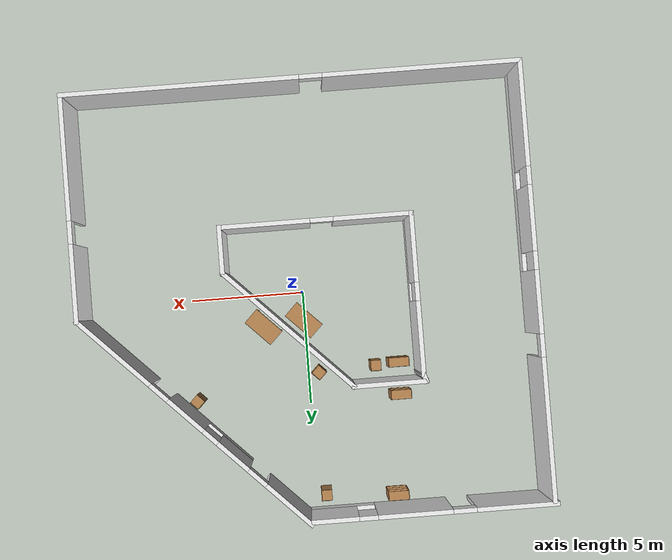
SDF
<sdf version="1.4">
 <world name="prepare">
  <model name="prepare">
   <link name="Wall_1">
    <pose>-4.94307 9.79265 0 0 -0 0</pose>
    <visual name="Wall_1_Visual_0">
     <pose>-3.52838 0 1.25 0 -0 0</pose>
     <geometry><box><size>3.5302 0.2 2.5</size></box></geometry>
     <material>
      <script><uri>file://media/materials/scripts/gazebo.material</uri><name>Gazebo/White</name></script>
     </material>
    </visual>
    <collision name="Wall_1_Collision_0">
     <geometry><box><size>3.5302 0.2 2.5</size></box></geometry>
     <pose>-3.52838 0 1.25 0 -0 0</pose>
    </collision>
    <visual name="Wall_1_Visual_1">
     <pose>0.845398 0 1.25 0 -0 0</pose>
     <geometry><box><size>3.21735 0.2 2.5</size></box></geometry>
     <material>
      <script><uri>file://media/materials/scripts/gazebo.material</uri><name>Gazebo/White</name></script>
     </material>
    </visual>
    <collision name="Wall_1_Collision_1">
     <geometry><box><size>3.21735 0.2 2.5</size></box></geometry>
     <pose>0.845398 0 1.25 0 -0 0</pose>
    </collision>
    <visual name="Wall_1_Visual_2">
     <pose>3.87378 0 0.25 0 -0 0</pose>
     <geometry><box><size>2.83941 0.2 0.5</size></box></geometry>
     <material>
      <script><uri>file://media/materials/scripts/gazebo.material</uri><name>Gazebo/White</name></script>
     </material>
    </visual>
    <collision name="Wall_1_Collision_2">
     <geometry><box><size>2.83941 0.2 0.5</size></box></geometry>
     <pose>3.87378 0 0.25 0 -0 0</pose>
    </collision>
    <visual name="Wall_1_Visual_3">
     <pose>4.27378 0 1.5 0 -0 0</pose>
     <geometry><box><size>2.0394 0.2 2</size></box></geometry>
     <material>
      <script><uri>file://media/materials/scripts/gazebo.material</uri><name>Gazebo/White</name></script>
     </material>
    </visual>
    <collision name="Wall_1_Collision_3">
     <geometry><box><size>2.0394 0.2 2</size></box></geometry>
     <pose>4.27378 0 1.5 0 -0 0</pose>
    </collision>
    <visual name="Wall_1_Visual_4">
     <pose>2.85407 0 1.9 0 -0 0</pose>
     <geometry><box><size>0.8 0.2 1.2</size></box></geometry>
     <material>
      <script><uri>file://media/materials/scripts/gazebo.material</uri><name>Gazebo/White</name></script>
     </material>
    </visual>
    <collision name="Wall_1_Collision_4">
     <geometry><box><size>0.8 0.2 1.2</size></box></geometry>
     <pose>2.85407 0 1.9 0 -0 0</pose>
    </collision>
    <visual name="Wall_1_Visual_5">
     <pose>-1.26328 0 2.25 0 -0 0</pose>
     <geometry><box><size>1 0.2 0.5</size></box></geometry>
     <material>
      <script><uri>file://media/materials/scripts/gazebo.material</uri><name>Gazebo/White</name></script>
     </material>
    </visual>
    <collision name="Wall_1_Collision_5">
     <geometry><box><size>1 0.2 0.5</size></box></geometry>
     <pose>-1.26328 0 2.25 0 -0 0</pose>
    </collision>
    <velocity_decay><linear>0</linear><angular>0</angular></velocity_decay>
   </link>
   <link name="Wall_10">
    <collision name="Wall_10_Collision">
     <geometry><box><size>2.1651 0.2 2.5</size></box></geometry>
     <pose>0 0 1.25 0 -0 0</pose>
    </collision>
    <visual name="Wall_10_Visual">
     <pose>0 0 1.25 0 -0 0</pose>
     <geometry><box><size>2.1651 0.2 2.5</size></box></geometry>
     <material>
      <script><uri>file://media/materials/scripts/gazebo.material</uri><name>Gazebo/White</name></script>
     </material>
    </visual>
    <velocity_decay><linear>0</linear><angular>0</angular></velocity_decay>
    <pose>3.33843 -2.04474 0 0 -0 1.5708</pose>
   </link>
   <link name="Wall_11">
    <collision name="Wall_11_Collision">
     <geometry><box><size>7.61086 0.2 2.5</size></box></geometry>
     <pose>0 0 1.25 0 -0 0</pose>
    </collision>
    <visual name="Wall_11_Visual">
     <pose>0 0 1.25 0 -0 0</pose>
     <geometry><box><size>7.61086 0.2 2.5</size></box></geometry>
     <material>
      <script><uri>file://media/materials/scripts/gazebo.material</uri><name>Gazebo/White</name></script>
     </material>
    </visual>
    <velocity_decay><linear>0</linear><angular>0</angular></velocity_decay>
    <pose>0.718295 1.55795 0 0 -0 2.35619</pose>
   </link>
   <link name="Wall_12">
    <collision name="Wall_12_Collision">
     <geometry><box><size>3.28802 0.2 2.5</size></box></geometry>
     <pose>0 0 1.25 0 -0 0</pose>
    </collision>
    <visual name="Wall_12_Visual">
     <pose>0 0 1.25 0 -0 0</pose>
     <geometry><box><size>3.28802 0.2 2.5</size></box></geometry>
     <material>
      <script><uri>file://media/materials/scripts/gazebo.material</uri><name>Gazebo/White</name></script>
     </material>
    </visual>
    <velocity_decay><linear>0</linear><angular>0</angular></velocity_decay>
    <pose>-3.44585 4.17808 0 0 -0 3.14159</pose>
   </link>
   <link name="Wall_13">
    <collision name="Wall_13_Collision">
     <geometry><box><size>0.495914 0.2 2.5</size></box></geometry>
     <pose>0 0 1.25 0 -0 0</pose>
    </collision>
    <visual name="Wall_13_Visual">
     <pose>0 0 1.25 0 -0 0</pose>
     <geometry><box><size>0.495914 0.2 2.5</size></box></geometry>
     <material>
      <script><uri>file://media/materials/scripts/gazebo.material</uri><name>Gazebo/White</name></script>
     </material>
    </visual>
    <velocity_decay><linear>0</linear><angular>0</angular></velocity_decay>
    <pose>-4.94307 4.03772 0 0 0 -1.24905</pose>
   </link>
   <link name="Wall_3">
    <pose>-10.043 0.294669 0 0 0 -1.5708</pose>
    <visual name="Wall_3_Visual_0">
     <pose>-6.42924 0 1.25 0 -0 0</pose>
     <geometry><box><size>6.33749 0.2 2.5</size></box></geometry>
     <material>
      <script><uri>file://media/materials/scripts/gazebo.material</uri><name>Gazebo/White</name></script>
     </material>
    </visual>
    <collision name="Wall_3_Collision_0">
     <geometry><box><size>6.33749 0.2 2.5</size></box></geometry>
     <pose>-6.42924 0 1.25 0 -0 0</pose>
    </collision>
    <visual name="Wall_3_Visual_1">
     <pose>-0.885762 0 1.25 0 -0 0</pose>
     <geometry><box><size>2.74947 0.2 2.5</size></box></geometry>
     <material>
      <script><uri>file://media/materials/scripts/gazebo.material</uri><name>Gazebo/White</name></script>
     </material>
    </visual>
    <collision name="Wall_3_Collision_1">
     <geometry><box><size>2.74947 0.2 2.5</size></box></geometry>
     <pose>-0.885762 0 1.25 0 -0 0</pose>
    </collision>
    <visual name="Wall_3_Visual_2">
     <pose>5.04348 0 0.25 0 -0 0</pose>
     <geometry><box><size>9.10901 0.2 0.5</size></box></geometry>
     <material>
      <script><uri>file://media/materials/scripts/gazebo.material</uri><name>Gazebo/White</name></script>
     </material>
    </visual>
    <collision name="Wall_3_Collision_2">
     <geometry><box><size>9.10901 0.2 0.5</size></box></geometry>
     <pose>5.04348 0 0.25 0 -0 0</pose>
    </collision>
    <visual name="Wall_3_Visual_3">
     <pose>2.71371 0 1.5 0 -0 0</pose>
     <geometry><box><size>2.84947 0.2 2</size></box></geometry>
     <material>
      <script><uri>file://media/materials/scripts/gazebo.material</uri><name>Gazebo/White</name></script>
     </material>
    </visual>
    <collision name="Wall_3_Collision_3">
     <geometry><box><size>2.84947 0.2 2</size></box></geometry>
     <pose>2.71371 0 1.5 0 -0 0</pose>
    </collision>
    <visual name="Wall_3_Visual_4">
     <pose>7.26822 0 1.5 0 -0 0</pose>
     <geometry><box><size>4.65954 0.2 2</size></box></geometry>
     <material>
      <script><uri>file://media/materials/scripts/gazebo.material</uri><name>Gazebo/White</name></script>
     </material>
    </visual>
    <collision name="Wall_3_Collision_4">
     <geometry><box><size>4.65954 0.2 2</size></box></geometry>
     <pose>7.26822 0 1.5 0 -0 0</pose>
    </collision>
    <visual name="Wall_3_Visual_5">
     <pose>0.888974 0 1.9 0 -0 0</pose>
     <geometry><box><size>0.8 0.2 1.2</size></box></geometry>
     <material>
      <script><uri>file://media/materials/scripts/gazebo.material</uri><name>Gazebo/White</name></script>
     </material>
    </visual>
    <collision name="Wall_3_Collision_5">
     <geometry><box><size>0.8 0.2 1.2</size></box></geometry>
     <pose>0.888974 0 1.9 0 -0 0</pose>
    </collision>
    <visual name="Wall_3_Visual_6">
     <pose>4.53845 0 1.9 0 -0 0</pose>
     <geometry><box><size>0.8 0.2 1.2</size></box></geometry>
     <material>
      <script><uri>file://media/materials/scripts/gazebo.material</uri><name>Gazebo/White</name></script>
     </material>
    </visual>
    <collision name="Wall_3_Collision_6">
     <geometry><box><size>0.8 0.2 1.2</size></box></geometry>
     <pose>4.53845 0 1.9 0 -0 0</pose>
    </collision>
    <visual name="Wall_3_Visual_7">
     <pose>-2.7605 0 2.25 0 -0 0</pose>
     <geometry><box><size>1 0.2 0.5</size></box></geometry>
     <material>
      <script><uri>file://media/materials/scripts/gazebo.material</uri><name>Gazebo/White</name></script>
     </material>
    </visual>
    <collision name="Wall_3_Collision_7">
     <geometry><box><size>1 0.2 0.5</size></box></geometry>
     <pose>-2.7605 0 2.25 0 -0 0</pose>
    </collision>
    <velocity_decay><linear>0</linear><angular>0</angular></velocity_decay>
   </link>
   <link name="Wall_4">
    <pose>-0.170679 -9.20332 0 0 -0 0</pose>
    <visual name="Wall_4_Visual_0">
     <pose>-5.68063 0 1.25 0 -0 0</pose>
     <geometry><box><size>8.58332 0.2 2.5</size></box></geometry>
     <material>
      <script><uri>file://media/materials/scripts/gazebo.material</uri><name>Gazebo/White</name></script>
     </material>
    </visual>
    <collision name="Wall_4_Collision_0">
     <geometry><box><size>8.58332 0.2 2.5</size></box></geometry>
     <pose>-5.68063 0 1.25 0 -0 0</pose>
    </collision>
    <visual name="Wall_4_Visual_1">
     <pose>4.79166 0 1.25 0 -0 0</pose>
     <geometry><box><size>10.3613 0.2 2.5</size></box></geometry>
     <material>
      <script><uri>file://media/materials/scripts/gazebo.material</uri><name>Gazebo/White</name></script>
     </material>
    </visual>
    <collision name="Wall_4_Collision_1">
     <geometry><box><size>10.3613 0.2 2.5</size></box></geometry>
     <pose>4.79166 0 1.25 0 -0 0</pose>
    </collision>
    <visual name="Wall_4_Visual_2">
     <pose>-0.888974 0 2.25 0 -0 0</pose>
     <geometry><box><size>1 0.2 0.5</size></box></geometry>
     <material>
      <script><uri>file://media/materials/scripts/gazebo.material</uri><name>Gazebo/White</name></script>
     </material>
    </visual>
    <collision name="Wall_4_Collision_2">
     <geometry><box><size>1 0.2 0.5</size></box></geometry>
     <pose>-0.888974 0 2.25 0 -0 0</pose>
    </collision>
    <velocity_decay><linear>0</linear><angular>0</angular></velocity_decay>
   </link>
   <link name="Wall_5">
    <pose>9.70161 -4.33735 0 0 -0 1.5708</pose>
    <visual name="Wall_5_Visual_0">
     <pose>-2.21831 0 1.25 0 -0 0</pose>
     <geometry><box><size>5.4953 0.2 2.5</size></box></geometry>
     <material>
      <script><uri>file://media/materials/scripts/gazebo.material</uri><name>Gazebo/White</name></script>
     </material>
    </visual>
    <collision name="Wall_5_Collision_0">
     <geometry><box><size>5.4953 0.2 2.5</size></box></geometry>
     <pose>-2.21831 0 1.25 0 -0 0</pose>
    </collision>
    <visual name="Wall_5_Visual_1">
     <pose>3.24765 0 1.25 0 -0 0</pose>
     <geometry><box><size>3.43662 0.2 2.5</size></box></geometry>
     <material>
      <script><uri>file://media/materials/scripts/gazebo.material</uri><name>Gazebo/White</name></script>
     </material>
    </visual>
    <collision name="Wall_5_Collision_1">
     <geometry><box><size>3.43662 0.2 2.5</size></box></geometry>
     <pose>3.24765 0 1.25 0 -0 0</pose>
    </collision>
    <visual name="Wall_5_Visual_2">
     <pose>1.02934 0 2.25 0 -0 0</pose>
     <geometry><box><size>1 0.2 0.5</size></box></geometry>
     <material>
      <script><uri>file://media/materials/scripts/gazebo.material</uri><name>Gazebo/White</name></script>
     </material>
    </visual>
    <collision name="Wall_5_Collision_2">
     <geometry><box><size>1 0.2 0.5</size></box></geometry>
     <pose>1.02934 0 2.25 0 -0 0</pose>
    </collision>
    <velocity_decay><linear>0</linear><angular>0</angular></velocity_decay>
   </link>
   <link name="Wall_6">
    <pose>5.0228 5.20742 0 0 -0 2.35619</pose>
    <visual name="Wall_6_Visual_0">
     <pose>-4.60094 0 1.25 0 -0 0</pose>
     <geometry><box><size>4.23179 0.2 2.5</size></box></geometry>
     <material>
      <script><uri>file://media/materials/scripts/gazebo.material</uri><name>Gazebo/White</name></script>
     </material>
    </visual>
    <collision name="Wall_6_Collision_0">
     <geometry><box><size>4.23179 0.2 2.5</size></box></geometry>
     <pose>-4.60094 0 1.25 0 -0 0</pose>
    </collision>
    <visual name="Wall_6_Visual_1">
     <pose>-0.479347 0 1.25 0 -0 0</pose>
     <geometry><box><size>2.01141 0.2 2.5</size></box></geometry>
     <material>
      <script><uri>file://media/materials/scripts/gazebo.material</uri><name>Gazebo/White</name></script>
     </material>
    </visual>
    <collision name="Wall_6_Collision_1">
     <geometry><box><size>2.01141 0.2 2.5</size></box></geometry>
     <pose>-0.479347 0 1.25 0 -0 0</pose>
    </collision>
    <visual name="Wall_6_Visual_2">
     <pose>5.39497 0 1.25 0 -0 0</pose>
     <geometry><box><size>2.64375 0.2 2.5</size></box></geometry>
     <material>
      <script><uri>file://media/materials/scripts/gazebo.material</uri><name>Gazebo/White</name></script>
     </material>
    </visual>
    <collision name="Wall_6_Collision_2">
     <geometry><box><size>2.64375 0.2 2.5</size></box></geometry>
     <pose>5.39497 0 1.25 0 -0 0</pose>
    </collision>
    <visual name="Wall_6_Visual_3">
     <pose>1.79973 0 0.25 0 -0 0</pose>
     <geometry><box><size>2.54673 0.2 0.5</size></box></geometry>
     <material>
      <script><uri>file://media/materials/scripts/gazebo.material</uri><name>Gazebo/White</name></script>
     </material>
    </visual>
    <collision name="Wall_6_Collision_3">
     <geometry><box><size>2.54673 0.2 0.5</size></box></geometry>
     <pose>1.79973 0 0.25 0 -0 0</pose>
    </collision>
    <visual name="Wall_6_Visual_4">
     <pose>2.19972 0 1.5 0 -0 0</pose>
     <geometry><box><size>1.74673 0.2 2</size></box></geometry>
     <material>
      <script><uri>file://media/materials/scripts/gazebo.material</uri><name>Gazebo/White</name></script>
     </material>
    </visual>
    <collision name="Wall_6_Collision_4">
     <geometry><box><size>1.74673 0.2 2</size></box></geometry>
     <pose>2.19972 0 1.5 0 -0 0</pose>
    </collision>
    <visual name="Wall_6_Visual_5">
     <pose>0.926357 0 1.9 0 -0 0</pose>
     <geometry><box><size>0.8 0.2 1.2</size></box></geometry>
     <material>
      <script><uri>file://media/materials/scripts/gazebo.material</uri><name>Gazebo/White</name></script>
     </material>
    </visual>
    <collision name="Wall_6_Collision_5">
     <geometry><box><size>0.8 0.2 1.2</size></box></geometry>
     <pose>0.926357 0 1.9 0 -0 0</pose>
    </collision>
    <visual name="Wall_6_Visual_6">
     <pose>-1.98505 0 2.25 0 -0 0</pose>
     <geometry><box><size>1 0.2 0.5</size></box></geometry>
     <material>
      <script><uri>file://media/materials/scripts/gazebo.material</uri><name>Gazebo/White</name></script>
     </material>
    </visual>
    <collision name="Wall_6_Collision_6">
     <geometry><box><size>1 0.2 0.5</size></box></geometry>
     <pose>-1.98505 0 2.25 0 -0 0</pose>
    </collision>
    <visual name="Wall_6_Visual_7">
     <pose>3.57309 0 2.25 0 -0 0</pose>
     <geometry><box><size>1 0.2 0.5</size></box></geometry>
     <material>
      <script><uri>file://media/materials/scripts/gazebo.material</uri><name>Gazebo/White</name></script>
     </material>
    </visual>
    <collision name="Wall_6_Collision_7">
     <geometry><box><size>1 0.2 0.5</size></box></geometry>
     <pose>3.57309 0 2.25 0 -0 0</pose>
    </collision>
    <velocity_decay><linear>0</linear><angular>0</angular></velocity_decay>
   </link>
   <link name="Wall_8">
    <pose>-4.89628 0.435033 0 0 0 -1.5708</pose>
    <visual name="Wall_8_Visual_0">
     <pose>-1.93437 0 1.25 0 -0 0</pose>
     <geometry><box><size>3.2559 0.2 2.5</size></box></geometry>
     <material>
      <script><uri>file://media/materials/scripts/gazebo.material</uri><name>Gazebo/White</name></script>
     </material>
    </visual>
    <collision name="Wall_8_Collision_0">
     <geometry><box><size>3.2559 0.2 2.5</size></box></geometry>
     <pose>-1.93437 0 1.25 0 -0 0</pose>
    </collision>
    <visual name="Wall_8_Visual_1">
     <pose>1.62795 0 0.25 0 -0 0</pose>
     <geometry><box><size>3.86874 0.2 0.5</size></box></geometry>
     <material>
      <script><uri>file://media/materials/scripts/gazebo.material</uri><name>Gazebo/White</name></script>
     </material>
    </visual>
    <collision name="Wall_8_Collision_1">
     <geometry><box><size>3.86874 0.2 0.5</size></box></geometry>
     <pose>1.62795 0 0.25 0 -0 0</pose>
    </collision>
    <visual name="Wall_8_Visual_2">
     <pose>2.02795 0 1.5 0 -0 0</pose>
     <geometry><box><size>3.06874 0.2 2</size></box></geometry>
     <material>
      <script><uri>file://media/materials/scripts/gazebo.material</uri><name>Gazebo/White</name></script>
     </material>
    </visual>
    <collision name="Wall_8_Collision_2">
     <geometry><box><size>3.06874 0.2 2</size></box></geometry>
     <pose>2.02795 0 1.5 0 -0 0</pose>
    </collision>
    <visual name="Wall_8_Visual_3">
     <pose>0.093576 0 1.9 0 -0 0</pose>
     <geometry><box><size>0.8 0.2 1.2</size></box></geometry>
     <material>
      <script><uri>file://media/materials/scripts/gazebo.material</uri><name>Gazebo/White</name></script>
     </material>
    </visual>
    <collision name="Wall_8_Collision_3">
     <geometry><box><size>0.8 0.2 1.2</size></box></geometry>
     <pose>0.093576 0 1.9 0 -0 0</pose>
    </collision>
    <velocity_decay><linear>0</linear><angular>0</angular></velocity_decay>
   </link>
   <link name="Wall_9">
    <pose>-0.778925 -3.02729 0 0 -0 0</pose>
    <visual name="Wall_9_Visual_0">
     <pose>-2.49904 0 1.25 0 -0 0</pose>
     <geometry><box><size>3.43662 0.2 2.5</size></box></geometry>
     <material>
      <script><uri>file://media/materials/scripts/gazebo.material</uri><name>Gazebo/White</name></script>
     </material>
    </visual>
    <collision name="Wall_9_Collision_0">
     <geometry><box><size>3.43662 0.2 2.5</size></box></geometry>
     <pose>-2.49904 0 1.25 0 -0 0</pose>
    </collision>
    <visual name="Wall_9_Visual_1">
     <pose>2.21831 0 1.25 0 -0 0</pose>
     <geometry><box><size>3.99808 0.2 2.5</size></box></geometry>
     <material>
      <script><uri>file://media/materials/scripts/gazebo.material</uri><name>Gazebo/White</name></script>
     </material>
    </visual>
    <collision name="Wall_9_Collision_1">
     <geometry><box><size>3.99808 0.2 2.5</size></box></geometry>
     <pose>2.21831 0 1.25 0 -0 0</pose>
    </collision>
    <visual name="Wall_9_Visual_2">
     <pose>-0.280729 0 2.25 0 -0 0</pose>
     <geometry><box><size>1 0.2 0.5</size></box></geometry>
     <material>
      <script><uri>file://media/materials/scripts/gazebo.material</uri><name>Gazebo/White</name></script>
     </material>
    </visual>
    <collision name="Wall_9_Collision_2">
     <geometry><box><size>1 0.2 0.5</size></box></geometry>
     <pose>-0.280729 0 2.25 0 -0 0</pose>
    </collision>
    <velocity_decay><linear>0</linear><angular>0</angular></velocity_decay>
   </link>
   <static>1</static>
  </model>
  <model name="bookshelf">
   <static>1</static>
   <link name="link">
    <inertial><mass>1</mass></inertial>
    <collision name="back">
     <pose>0 0.005 0.6 0 -0 0</pose>
     <geometry><box><size>0.9 0.01 1.2</size></box></geometry>
    </collision>
    <visual name="visual1">
     <pose>0 0.005 0.6 0 -0 0</pose>
     <geometry><box><size>0.9 0.01 1.2</size></box></geometry>
     <material>
      <script><uri>file://media/materials/scripts/gazebo.material</uri><name>Gazebo/Wood</name></script>
     </material>
    </visual>
    <collision name="left_side">
     <pose>0.45 -0.195 0.6 0 -0 0</pose>
     <geometry><box><size>0.02 0.4 1.2</size></box></geometry>
    </collision>
    <visual name="visual2">
     <pose>0.45 -0.195 0.6 0 -0 0</pose>
     <geometry><box><size>0.02 0.4 1.2</size></box></geometry>
     <material>
      <script><uri>file://media/materials/scripts/gazebo.material</uri><name>Gazebo/Wood</name></script>
     </material>
    </visual>
    <collision name="right_side">
     <pose>-0.45 -0.195 0.6 0 -0 0</pose>
     <geometry><box><size>0.02 0.4 1.2</size></box></geometry>
    </collision>
    <visual name="visual3">
     <pose>-0.45 -0.195 0.6 0 -0 0</pose>
     <geometry><box><size>0.02 0.4 1.2</size></box></geometry>
     <material>
      <script><uri>file://media/materials/scripts/gazebo.material</uri><name>Gazebo/Wood</name></script>
     </material>
    </visual>
    <collision name="bottom">
     <pose>0 -0.195 0.03 0 -0 0</pose>
     <geometry><box><size>0.88 0.4 0.06</size></box></geometry>
    </collision>
    <visual name="visual4">
     <pose>0 -0.195 0.03 0 -0 0</pose>
     <geometry><box><size>0.88 0.4 0.06</size></box></geometry>
     <material>
      <script><uri>file://media/materials/scripts/gazebo.material</uri><name>Gazebo/Wood</name></script>
     </material>
    </visual>
    <collision name="top">
     <pose>0 -0.195 1.19 0 -0 0</pose>
     <geometry><box><size>0.88 0.4 0.02</size></box></geometry>
    </collision>
    <visual name="visual5">
     <pose>0 -0.195 1.19 0 -0 0</pose>
     <geometry><box><size>0.88 0.4 0.02</size></box></geometry>
     <material>
      <script><uri>file://media/materials/scripts/gazebo.material</uri><name>Gazebo/Wood</name></script>
     </material>
    </visual>
    <collision name="low_shelf">
     <pose>0 -0.195 0.43 0 -0 0</pose>
     <geometry><box><size>0.88 0.4 0.02</size></box></geometry>
    </collision>
    <visual name="visual6">
     <pose>0 -0.195 0.43 0 -0 0</pose>
     <geometry><box><size>0.88 0.4 0.02</size></box></geometry>
     <material>
      <script><uri>file://media/materials/scripts/gazebo.material</uri><name>Gazebo/Wood</name></script>
     </material>
    </visual>
    <collision name="high_shelf">
     <pose>0 -0.195 0.8 0 -0 0</pose>
     <geometry><box><size>0.88 0.4 0.02</size></box></geometry>
    </collision>
    <visual name="visual7">
     <pose>0 -0.195 0.8 0 -0 0</pose>
     <geometry><box><size>0.88 0.4 0.02</size></box></geometry>
     <material>
      <script><uri>file://media/materials/scripts/gazebo.material</uri><name>Gazebo/Wood</name></script>
     </material>
    </visual>
    <velocity_decay><linear>0</linear><angular>0</angular></velocity_decay>
   </link>
   <pose>-4 3.56665 0 0 -0 0</pose>
  </model>
  <model name="cabinet_0">
   <static>1</static>
   <link name="cabinet_bottom_plate">
    <inertial>
     <pose>0 0 -1 0 -0 0</pose>
     <inertia><ixx>2.05</ixx><ixy>0</ixy><ixz>0</ixz><iyy>2.05</iyy><iyz>0</iyz><izz>2.05</izz></inertia>
     <mass>25</mass>
    </inertial>
    <collision name="cabinet_bottom_plate_geom">
     <pose>0 0 0.01 0 -0 0</pose>
     <geometry><box><size>0.45 0.45 0.02</size></box></geometry>
    </collision>
    <visual name="cabinet_bottom_plate_geom_visual">
     <pose>0 0 0.01 0 -0 0</pose>
     <geometry><box><size>0.45 0.45 0.02</size></box></geometry>
     <material>
      <script><uri>file://media/materials/scripts/gazebo.material</uri><name>Gazebo/Wood</name></script>
     </material>
    </visual>
    <collision name="cabinet_bottom_plate_geom_cabinet_back_plate">
     <pose>0.235 0 0.51 0 -0 0</pose>
     <geometry><box><size>0.02 0.45 1.02</size></box></geometry>
    </collision>
    <visual name="cabinet_bottom_plate_geom_cabinet_back_plate_visual">
     <pose>0.235 0 0.51 0 -0 0</pose>
     <geometry><box><size>0.02 0.45 1.02</size></box></geometry>
     <material>
      <script><uri>file://media/materials/scripts/gazebo.material</uri><name>Gazebo/Wood</name></script>
     </material>
    </visual>
    <collision name="cabinet_bottom_plate_geom_cabinet_left_plate">
     <pose>0 0.235 0.51 0 -0 0</pose>
     <geometry><box><size>0.45 0.02 1.02</size></box></geometry>
    </collision>
    <visual name="cabinet_bottom_plate_geom_cabinet_left_plate_visual">
     <pose>0 0.235 0.51 0 -0 0</pose>
     <geometry><box><size>0.45 0.02 1.02</size></box></geometry>
     <material>
      <script><uri>file://media/materials/scripts/gazebo.material</uri><name>Gazebo/Wood</name></script>
     </material>
    </visual>
    <collision name="cabinet_bottom_plate_geom_cabinet_middle_plate">
     <pose>0 0 0.51 0 -0 0</pose>
     <geometry><box><size>0.45 0.45 0.02</size></box></geometry>
    </collision>
    <visual name="cabinet_bottom_plate_geom_cabinet_middle_plate_visual">
     <pose>0 0 0.51 0 -0 0</pose>
     <geometry><box><size>0.45 0.45 0.02</size></box></geometry>
     <material>
      <script><uri>file://media/materials/scripts/gazebo.material</uri><name>Gazebo/Wood</name></script>
     </material>
    </visual>
    <collision name="cabinet_bottom_plate_geom_cabinet_right_plate">
     <pose>0 -0.235 0.51 0 -0 0</pose>
     <geometry><box><size>0.45 0.02 1.02</size></box></geometry>
    </collision>
    <visual name="cabinet_bottom_plate_geom_cabinet_right_plate_visual">
     <pose>0 -0.235 0.51 0 -0 0</pose>
     <geometry><box><size>0.45 0.02 1.02</size></box></geometry>
     <material>
      <script><uri>file://media/materials/scripts/gazebo.material</uri><name>Gazebo/Wood</name></script>
     </material>
    </visual>
    <collision name="cabinet_bottom_plate_geom_cabinet_top_plate">
     <pose>0 0 1.01 0 -0 0</pose>
     <geometry><box><size>0.45 0.45 0.02</size></box></geometry>
    </collision>
    <visual name="cabinet_bottom_plate_geom_cabinet_top_plate_visual">
     <pose>0 0 1.01 0 -0 0</pose>
     <geometry><box><size>0.45 0.45 0.02</size></box></geometry>
     <material>
      <script><uri>file://media/materials/scripts/gazebo.material</uri><name>Gazebo/Wood</name></script>
     </material>
    </visual>
    <velocity_decay><linear>0</linear><angular>0</angular></velocity_decay>
   </link>
   <pose>5 4.45603 0 0 -0 2.3561</pose>
  </model>
  <model name="bookshelf_1">
   <static>1</static>
   <link name="link">
    <inertial><mass>1</mass></inertial>
    <collision name="back">
     <pose>0 0.005 0.6 0 -0 0</pose>
     <geometry><box><size>0.9 0.01 1.2</size></box></geometry>
    </collision>
    <visual name="visual1">
     <pose>0 0.005 0.6 0 -0 0</pose>
     <geometry><box><size>0.9 0.01 1.2</size></box></geometry>
     <material>
      <script><uri>file://media/materials/scripts/gazebo.material</uri><name>Gazebo/Wood</name></script>
     </material>
    </visual>
    <collision name="left_side">
     <pose>0.45 -0.195 0.6 0 -0 0</pose>
     <geometry><box><size>0.02 0.4 1.2</size></box></geometry>
    </collision>
    <visual name="visual2">
     <pose>0.45 -0.195 0.6 0 -0 0</pose>
     <geometry><box><size>0.02 0.4 1.2</size></box></geometry>
     <material>
      <script><uri>file://media/materials/scripts/gazebo.material</uri><name>Gazebo/Wood</name></script>
     </material>
    </visual>
    <collision name="right_side">
     <pose>-0.45 -0.195 0.6 0 -0 0</pose>
     <geometry><box><size>0.02 0.4 1.2</size></box></geometry>
    </collision>
    <visual name="visual3">
     <pose>-0.45 -0.195 0.6 0 -0 0</pose>
     <geometry><box><size>0.02 0.4 1.2</size></box></geometry>
     <material>
      <script><uri>file://media/materials/scripts/gazebo.material</uri><name>Gazebo/Wood</name></script>
     </material>
    </visual>
    <collision name="bottom">
     <pose>0 -0.195 0.03 0 -0 0</pose>
     <geometry><box><size>0.88 0.4 0.06</size></box></geometry>
    </collision>
    <visual name="visual4">
     <pose>0 -0.195 0.03 0 -0 0</pose>
     <geometry><box><size>0.88 0.4 0.06</size></box></geometry>
     <material>
      <script><uri>file://media/materials/scripts/gazebo.material</uri><name>Gazebo/Wood</name></script>
     </material>
    </visual>
    <collision name="top">
     <pose>0 -0.195 1.19 0 -0 0</pose>
     <geometry><box><size>0.88 0.4 0.02</size></box></geometry>
    </collision>
    <visual name="visual5">
     <pose>0 -0.195 1.19 0 -0 0</pose>
     <geometry><box><size>0.88 0.4 0.02</size></box></geometry>
     <material>
      <script><uri>file://media/materials/scripts/gazebo.material</uri><name>Gazebo/Wood</name></script>
     </material>
    </visual>
    <collision name="low_shelf">
     <pose>0 -0.195 0.43 0 -0 0</pose>
     <geometry><box><size>0.88 0.4 0.02</size></box></geometry>
    </collision>
    <visual name="visual6">
     <pose>0 -0.195 0.43 0 -0 0</pose>
     <geometry><box><size>0.88 0.4 0.02</size></box></geometry>
     <material>
      <script><uri>file://media/materials/scripts/gazebo.material</uri><name>Gazebo/Wood</name></script>
     </material>
    </visual>
    <collision name="high_shelf">
     <pose>0 -0.195 0.8 0 -0 0</pose>
     <geometry><box><size>0.88 0.4 0.02</size></box></geometry>
    </collision>
    <visual name="visual7">
     <pose>0 -0.195 0.8 0 -0 0</pose>
     <geometry><box><size>0.88 0.4 0.02</size></box></geometry>
     <material>
      <script><uri>file://media/materials/scripts/gazebo.material</uri><name>Gazebo/Wood</name></script>
     </material>
    </visual>
    <velocity_decay><linear>0</linear><angular>0</angular></velocity_decay>
   </link>
   <pose>-3.5501 9.41682 0 0 -0 0</pose>
  </model>
  <model name="cabinet_1">
   <static>1</static>
   <link name="cabinet_bottom_plate">
    <inertial>
     <pose>0 0 -1 0 -0 0</pose>
     <inertia><ixx>2.05</ixx><ixy>0</ixy><ixz>0</ixz><iyy>2.05</iyy><iyz>0</iyz><izz>2.05</izz></inertia>
     <mass>25</mass>
    </inertial>
    <collision name="cabinet_bottom_plate_geom">
     <pose>0 0 0.01 0 -0 0</pose>
     <geometry><box><size>0.45 0.45 0.02</size></box></geometry>
    </collision>
    <visual name="cabinet_bottom_plate_geom_visual">
     <pose>0 0 0.01 0 -0 0</pose>
     <geometry><box><size>0.45 0.45 0.02</size></box></geometry>
     <material>
      <script><uri>file://media/materials/scripts/gazebo.material</uri><name>Gazebo/Wood</name></script>
     </material>
    </visual>
    <collision name="cabinet_bottom_plate_geom_cabinet_back_plate">
     <pose>0.235 0 0.51 0 -0 0</pose>
     <geometry><box><size>0.02 0.45 1.02</size></box></geometry>
    </collision>
    <visual name="cabinet_bottom_plate_geom_cabinet_back_plate_visual">
     <pose>0.235 0 0.51 0 -0 0</pose>
     <geometry><box><size>0.02 0.45 1.02</size></box></geometry>
     <material>
      <script><uri>file://media/materials/scripts/gazebo.material</uri><name>Gazebo/Wood</name></script>
     </material>
    </visual>
    <collision name="cabinet_bottom_plate_geom_cabinet_left_plate">
     <pose>0 0.235 0.51 0 -0 0</pose>
     <geometry><box><size>0.45 0.02 1.02</size></box></geometry>
    </collision>
    <visual name="cabinet_bottom_plate_geom_cabinet_left_plate_visual">
     <pose>0 0.235 0.51 0 -0 0</pose>
     <geometry><box><size>0.45 0.02 1.02</size></box></geometry>
     <material>
      <script><uri>file://media/materials/scripts/gazebo.material</uri><name>Gazebo/Wood</name></script>
     </material>
    </visual>
    <collision name="cabinet_bottom_plate_geom_cabinet_middle_plate">
     <pose>0 0 0.51 0 -0 0</pose>
     <geometry><box><size>0.45 0.45 0.02</size></box></geometry>
    </collision>
    <visual name="cabinet_bottom_plate_geom_cabinet_middle_plate_visual">
     <pose>0 0 0.51 0 -0 0</pose>
     <geometry><box><size>0.45 0.45 0.02</size></box></geometry>
     <material>
      <script><uri>file://media/materials/scripts/gazebo.material</uri><name>Gazebo/Wood</name></script>
     </material>
    </visual>
    <collision name="cabinet_bottom_plate_geom_cabinet_right_plate">
     <pose>0 -0.235 0.51 0 -0 0</pose>
     <geometry><box><size>0.45 0.02 1.02</size></box></geometry>
    </collision>
    <visual name="cabinet_bottom_plate_geom_cabinet_right_plate_visual">
     <pose>0 -0.235 0.51 0 -0 0</pose>
     <geometry><box><size>0.45 0.02 1.02</size></box></geometry>
     <material>
      <script><uri>file://media/materials/scripts/gazebo.material</uri><name>Gazebo/Wood</name></script>
     </material>
    </visual>
    <collision name="cabinet_bottom_plate_geom_cabinet_top_plate">
     <pose>0 0 1.01 0 -0 0</pose>
     <geometry><box><size>0.45 0.45 0.02</size></box></geometry>
    </collision>
    <visual name="cabinet_bottom_plate_geom_cabinet_top_plate_visual">
     <pose>0 0 1.01 0 -0 0</pose>
     <geometry><box><size>0.45 0.45 0.02</size></box></geometry>
     <material>
      <script><uri>file://media/materials/scripts/gazebo.material</uri><name>Gazebo/Wood</name></script>
     </material>
    </visual>
    <velocity_decay><linear>0</linear><angular>0</angular></velocity_decay>
   </link>
   <pose>-0.400209 9 0 0 -0 0</pose>
  </model>
  <model name="cabinet_3">
   <static>1</static>
   <link name="cabinet_bottom_plate">
    <inertial>
     <pose>0 0 -1 0 -0 0</pose>
     <inertia><ixx>2.05</ixx><ixy>0</ixy><ixz>0</ixz><iyy>2.05</iyy><iyz>0</iyz><izz>2.05</izz></inertia>
     <mass>25</mass>
    </inertial>
    <collision name="cabinet_bottom_plate_geom">
     <pose>0 0 0.01 0 -0 0</pose>
     <geometry><box><size>0.45 0.45 0.02</size></box></geometry>
    </collision>
    <visual name="cabinet_bottom_plate_geom_visual">
     <pose>0 0 0.01 0 -0 0</pose>
     <geometry><box><size>0.45 0.45 0.02</size></box></geometry>
     <material>
      <script><uri>file://media/materials/scripts/gazebo.material</uri><name>Gazebo/Wood</name></script>
     </material>
    </visual>
    <collision name="cabinet_bottom_plate_geom_cabinet_back_plate">
     <pose>0.235 0 0.51 0 -0 0</pose>
     <geometry><box><size>0.02 0.45 1.02</size></box></geometry>
    </collision>
    <visual name="cabinet_bottom_plate_geom_cabinet_back_plate_visual">
     <pose>0.235 0 0.51 0 -0 0</pose>
     <geometry><box><size>0.02 0.45 1.02</size></box></geometry>
     <material>
      <script><uri>file://media/materials/scripts/gazebo.material</uri><name>Gazebo/Wood</name></script>
     </material>
    </visual>
    <collision name="cabinet_bottom_plate_geom_cabinet_left_plate">
     <pose>0 0.235 0.51 0 -0 0</pose>
     <geometry><box><size>0.45 0.02 1.02</size></box></geometry>
    </collision>
    <visual name="cabinet_bottom_plate_geom_cabinet_left_plate_visual">
     <pose>0 0.235 0.51 0 -0 0</pose>
     <geometry><box><size>0.45 0.02 1.02</size></box></geometry>
     <material>
      <script><uri>file://media/materials/scripts/gazebo.material</uri><name>Gazebo/Wood</name></script>
     </material>
    </visual>
    <collision name="cabinet_bottom_plate_geom_cabinet_middle_plate">
     <pose>0 0 0.51 0 -0 0</pose>
     <geometry><box><size>0.45 0.45 0.02</size></box></geometry>
    </collision>
    <visual name="cabinet_bottom_plate_geom_cabinet_middle_plate_visual">
     <pose>0 0 0.51 0 -0 0</pose>
     <geometry><box><size>0.45 0.45 0.02</size></box></geometry>
     <material>
      <script><uri>file://media/materials/scripts/gazebo.material</uri><name>Gazebo/Wood</name></script>
     </material>
    </visual>
    <collision name="cabinet_bottom_plate_geom_cabinet_right_plate">
     <pose>0 -0.235 0.51 0 -0 0</pose>
     <geometry><box><size>0.45 0.02 1.02</size></box></geometry>
    </collision>
    <visual name="cabinet_bottom_plate_geom_cabinet_right_plate_visual">
     <pose>0 -0.235 0.51 0 -0 0</pose>
     <geometry><box><size>0.45 0.02 1.02</size></box></geometry>
     <material>
      <script><uri>file://media/materials/scripts/gazebo.material</uri><name>Gazebo/Wood</name></script>
     </material>
    </visual>
    <collision name="cabinet_bottom_plate_geom_cabinet_top_plate">
     <pose>0 0 1.01 0 -0 0</pose>
     <geometry><box><size>0.45 0.45 0.02</size></box></geometry>
    </collision>
    <visual name="cabinet_bottom_plate_geom_cabinet_top_plate_visual">
     <pose>0 0 1.01 0 -0 0</pose>
     <geometry><box><size>0.45 0.45 0.02</size></box></geometry>
     <material>
      <script><uri>file://media/materials/scripts/gazebo.material</uri><name>Gazebo/Wood</name></script>
     </material>
    </visual>
    <velocity_decay><linear>0</linear><angular>0</angular></velocity_decay>
   </link>
   <pose>-3 3.45277 0 0 -0 0</pose>
  </model>
  <model name="table_1">
   <static>1</static>
   <link name="link">
    <collision name="surface">
     <pose>0 0 1 0 -0 0</pose>
     <geometry><box><size>1.5 0.8 0.03</size></box></geometry>
    </collision>
    <visual name="visual1">
     <pose>0 0 1 0 -0 0</pose>
     <geometry><box><size>1.5 0.8 0.03</size></box></geometry>
     <material>
      <script><uri>file://media/materials/scripts/gazebo.material</uri><name>Gazebo/Wood</name></script>
     </material>
    </visual>
    <collision name="front_left_leg">
     <pose>0.68 0.38 0.5 0 -0 0</pose>
     <geometry><cylinder><radius>0.02</radius><length>1</length></cylinder></geometry>
    </collision>
    <visual name="front_left_leg">
     <pose>0.68 0.38 0.5 0 -0 0</pose>
     <geometry><cylinder><radius>0.02</radius><length>1</length></cylinder></geometry>
     <material>
      <script><uri>file://media/materials/scripts/gazebo.material</uri><name>Gazebo/Grey</name></script>
     </material>
    </visual>
    <collision name="front_right_leg">
     <pose>0.68 -0.38 0.5 0 -0 0</pose>
     <geometry><cylinder><radius>0.02</radius><length>1</length></cylinder></geometry>
    </collision>
    <visual name="front_right_leg">
     <pose>0.68 -0.38 0.5 0 -0 0</pose>
     <geometry><cylinder><radius>0.02</radius><length>1</length></cylinder></geometry>
     <material>
      <script><uri>file://media/materials/scripts/gazebo.material</uri><name>Gazebo/Grey</name></script>
     </material>
    </visual>
    <collision name="back_right_leg">
     <pose>-0.68 -0.38 0.5 0 -0 0</pose>
     <geometry><cylinder><radius>0.02</radius><length>1</length></cylinder></geometry>
    </collision>
    <visual name="back_right_leg">
     <pose>-0.68 -0.38 0.5 0 -0 0</pose>
     <geometry><cylinder><radius>0.02</radius><length>1</length></cylinder></geometry>
     <material>
      <script><uri>file://media/materials/scripts/gazebo.material</uri><name>Gazebo/Grey</name></script>
     </material>
    </visual>
    <collision name="back_left_leg">
     <pose>-0.68 0.38 0.5 0 -0 0</pose>
     <geometry><cylinder><radius>0.02</radius><length>1</length></cylinder></geometry>
    </collision>
    <visual name="back_left_leg">
     <pose>-0.68 0.38 0.5 0 -0 0</pose>
     <geometry><cylinder><radius>0.02</radius><length>1</length></cylinder></geometry>
     <material>
      <script><uri>file://media/materials/scripts/gazebo.material</uri><name>Gazebo/Grey</name></script>
     </material>
    </visual>
    <velocity_decay><linear>0</linear><angular>0</angular></velocity_decay>
   </link>
   <pose>1.83085 1.38071 0 0 -0 2.3561</pose>
  </model>
  <model name="cabinet_8">
   <static>1</static>
   <link name="cabinet_bottom_plate">
    <inertial>
     <pose>0 0 -1 0 -0 0</pose>
     <inertia><ixx>2.05</ixx><ixy>0</ixy><ixz>0</ixz><iyy>2.05</iyy><iyz>0</iyz><izz>2.05</izz></inertia>
     <mass>25</mass>
    </inertial>
    <collision name="cabinet_bottom_plate_geom">
     <pose>0 0 0.01 0 -0 0</pose>
     <geometry><box><size>0.45 0.45 0.02</size></box></geometry>
    </collision>
    <visual name="cabinet_bottom_plate_geom_visual">
     <pose>0 0 0.01 0 -0 0</pose>
     <geometry><box><size>0.45 0.45 0.02</size></box></geometry>
     <material>
      <script><uri>file://media/materials/scripts/gazebo.material</uri><name>Gazebo/Wood</name></script>
     </material>
    </visual>
    <collision name="cabinet_bottom_plate_geom_cabinet_back_plate">
     <pose>0.235 0 0.51 0 -0 0</pose>
     <geometry><box><size>0.02 0.45 1.02</size></box></geometry>
    </collision>
    <visual name="cabinet_bottom_plate_geom_cabinet_back_plate_visual">
     <pose>0.235 0 0.51 0 -0 0</pose>
     <geometry><box><size>0.02 0.45 1.02</size></box></geometry>
     <material>
      <script><uri>file://media/materials/scripts/gazebo.material</uri><name>Gazebo/Wood</name></script>
     </material>
    </visual>
    <collision name="cabinet_bottom_plate_geom_cabinet_left_plate">
     <pose>0 0.235 0.51 0 -0 0</pose>
     <geometry><box><size>0.45 0.02 1.02</size></box></geometry>
    </collision>
    <visual name="cabinet_bottom_plate_geom_cabinet_left_plate_visual">
     <pose>0 0.235 0.51 0 -0 0</pose>
     <geometry><box><size>0.45 0.02 1.02</size></box></geometry>
     <material>
      <script><uri>file://media/materials/scripts/gazebo.material</uri><name>Gazebo/Wood</name></script>
     </material>
    </visual>
    <collision name="cabinet_bottom_plate_geom_cabinet_middle_plate">
     <pose>0 0 0.51 0 -0 0</pose>
     <geometry><box><size>0.45 0.45 0.02</size></box></geometry>
    </collision>
    <visual name="cabinet_bottom_plate_geom_cabinet_middle_plate_visual">
     <pose>0 0 0.51 0 -0 0</pose>
     <geometry><box><size>0.45 0.45 0.02</size></box></geometry>
     <material>
      <script><uri>file://media/materials/scripts/gazebo.material</uri><name>Gazebo/Wood</name></script>
     </material>
    </visual>
    <collision name="cabinet_bottom_plate_geom_cabinet_right_plate">
     <pose>0 -0.235 0.51 0 -0 0</pose>
     <geometry><box><size>0.45 0.02 1.02</size></box></geometry>
    </collision>
    <visual name="cabinet_bottom_plate_geom_cabinet_right_plate_visual">
     <pose>0 -0.235 0.51 0 -0 0</pose>
     <geometry><box><size>0.45 0.02 1.02</size></box></geometry>
     <material>
      <script><uri>file://media/materials/scripts/gazebo.material</uri><name>Gazebo/Wood</name></script>
     </material>
    </visual>
    <collision name="cabinet_bottom_plate_geom_cabinet_top_plate">
     <pose>0 0 1.01 0 -0 0</pose>
     <geometry><box><size>0.45 0.45 0.02</size></box></geometry>
    </collision>
    <visual name="cabinet_bottom_plate_geom_cabinet_top_plate_visual">
     <pose>0 0 1.01 0 -0 0</pose>
     <geometry><box><size>0.45 0.45 0.02</size></box></geometry>
     <material>
      <script><uri>file://media/materials/scripts/gazebo.material</uri><name>Gazebo/Wood</name></script>
     </material>
    </visual>
    <velocity_decay><linear>0</linear><angular>0</angular></velocity_decay>
   </link>
   <pose>-0.47204 3.58076 0 0 -0 2.3561</pose>
  </model>
  <model name="bookshelf_10">
   <static>1</static>
   <link name="link">
    <inertial><mass>1</mass></inertial>
    <collision name="back">
     <pose>0 0.005 0.6 0 -0 0</pose>
     <geometry><box><size>0.9 0.01 1.2</size></box></geometry>
    </collision>
    <visual name="visual1">
     <pose>0 0.005 0.6 0 -0 0</pose>
     <geometry><box><size>0.9 0.01 1.2</size></box></geometry>
     <material>
      <script><uri>file://media/materials/scripts/gazebo.material</uri><name>Gazebo/Wood</name></script>
     </material>
    </visual>
    <collision name="left_side">
     <pose>0.45 -0.195 0.6 0 -0 0</pose>
     <geometry><box><size>0.02 0.4 1.2</size></box></geometry>
    </collision>
    <visual name="visual2">
     <pose>0.45 -0.195 0.6 0 -0 0</pose>
     <geometry><box><size>0.02 0.4 1.2</size></box></geometry>
     <material>
      <script><uri>file://media/materials/scripts/gazebo.material</uri><name>Gazebo/Wood</name></script>
     </material>
    </visual>
    <collision name="right_side">
     <pose>-0.45 -0.195 0.6 0 -0 0</pose>
     <geometry><box><size>0.02 0.4 1.2</size></box></geometry>
    </collision>
    <visual name="visual3">
     <pose>-0.45 -0.195 0.6 0 -0 0</pose>
     <geometry><box><size>0.02 0.4 1.2</size></box></geometry>
     <material>
      <script><uri>file://media/materials/scripts/gazebo.material</uri><name>Gazebo/Wood</name></script>
     </material>
    </visual>
    <collision name="bottom">
     <pose>0 -0.195 0.03 0 -0 0</pose>
     <geometry><box><size>0.88 0.4 0.06</size></box></geometry>
    </collision>
    <visual name="visual4">
     <pose>0 -0.195 0.03 0 -0 0</pose>
     <geometry><box><size>0.88 0.4 0.06</size></box></geometry>
     <material>
      <script><uri>file://media/materials/scripts/gazebo.material</uri><name>Gazebo/Wood</name></script>
     </material>
    </visual>
    <collision name="top">
     <pose>0 -0.195 1.19 0 -0 0</pose>
     <geometry><box><size>0.88 0.4 0.02</size></box></geometry>
    </collision>
    <visual name="visual5">
     <pose>0 -0.195 1.19 0 -0 0</pose>
     <geometry><box><size>0.88 0.4 0.02</size></box></geometry>
     <material>
      <script><uri>file://media/materials/scripts/gazebo.material</uri><name>Gazebo/Wood</name></script>
     </material>
    </visual>
    <collision name="low_shelf">
     <pose>0 -0.195 0.43 0 -0 0</pose>
     <geometry><box><size>0.88 0.4 0.02</size></box></geometry>
    </collision>
    <visual name="visual6">
     <pose>0 -0.195 0.43 0 -0 0</pose>
     <geometry><box><size>0.88 0.4 0.02</size></box></geometry>
     <material>
      <script><uri>file://media/materials/scripts/gazebo.material</uri><name>Gazebo/Wood</name></script>
     </material>
    </visual>
    <collision name="high_shelf">
     <pose>0 -0.195 0.8 0 -0 0</pose>
     <geometry><box><size>0.88 0.4 0.02</size></box></geometry>
    </collision>
    <visual name="visual7">
     <pose>0 -0.195 0.8 0 -0 0</pose>
     <geometry><box><size>0.88 0.4 0.02</size></box></geometry>
     <material>
      <script><uri>file://media/materials/scripts/gazebo.material</uri><name>Gazebo/Wood</name></script>
     </material>
    </visual>
    <velocity_decay><linear>0</linear><angular>0</angular></velocity_decay>
   </link>
   <pose>-4 5 0 0 -0 0</pose>
  </model>
  <model name="table_2">
   <static>1</static>
   <link name="link">
    <collision name="surface">
     <pose>0 0 1 0 -0 0</pose>
     <geometry><box><size>1.5 0.8 0.03</size></box></geometry>
    </collision>
    <visual name="visual1">
     <pose>0 0 1 0 -0 0</pose>
     <geometry><box><size>1.5 0.8 0.03</size></box></geometry>
     <material>
      <script><uri>file://media/materials/scripts/gazebo.material</uri><name>Gazebo/Wood</name></script>
     </material>
    </visual>
    <collision name="front_left_leg">
     <pose>0.68 0.38 0.5 0 -0 0</pose>
     <geometry><cylinder><radius>0.02</radius><length>1</length></cylinder></geometry>
    </collision>
    <visual name="front_left_leg">
     <pose>0.68 0.38 0.5 0 -0 0</pose>
     <geometry><cylinder><radius>0.02</radius><length>1</length></cylinder></geometry>
     <material>
      <script><uri>file://media/materials/scripts/gazebo.material</uri><name>Gazebo/Grey</name></script>
     </material>
    </visual>
    <collision name="front_right_leg">
     <pose>0.68 -0.38 0.5 0 -0 0</pose>
     <geometry><cylinder><radius>0.02</radius><length>1</length></cylinder></geometry>
    </collision>
    <visual name="front_right_leg">
     <pose>0.68 -0.38 0.5 0 -0 0</pose>
     <geometry><cylinder><radius>0.02</radius><length>1</length></cylinder></geometry>
     <material>
      <script><uri>file://media/materials/scripts/gazebo.material</uri><name>Gazebo/Grey</name></script>
     </material>
    </visual>
    <collision name="back_right_leg">
     <pose>-0.68 -0.38 0.5 0 -0 0</pose>
     <geometry><cylinder><radius>0.02</radius><length>1</length></cylinder></geometry>
    </collision>
    <visual name="back_right_leg">
     <pose>-0.68 -0.38 0.5 0 -0 0</pose>
     <geometry><cylinder><radius>0.02</radius><length>1</length></cylinder></geometry>
     <material>
      <script><uri>file://media/materials/scripts/gazebo.material</uri><name>Gazebo/Grey</name></script>
     </material>
    </visual>
    <collision name="back_left_leg">
     <pose>-0.68 0.38 0.5 0 -0 0</pose>
     <geometry><cylinder><radius>0.02</radius><length>1</length></cylinder></geometry>
    </collision>
    <visual name="back_left_leg">
     <pose>-0.68 0.38 0.5 0 -0 0</pose>
     <geometry><cylinder><radius>0.02</radius><length>1</length></cylinder></geometry>
     <material>
      <script><uri>file://media/materials/scripts/gazebo.material</uri><name>Gazebo/Grey</name></script>
     </material>
    </visual>
    <velocity_decay><linear>0</linear><angular>0</angular></velocity_decay>
   </link>
   <pose>0.033912 1.21461 0 0 -0 2.3561</pose>
  </model>
 </world>
</sdf>
